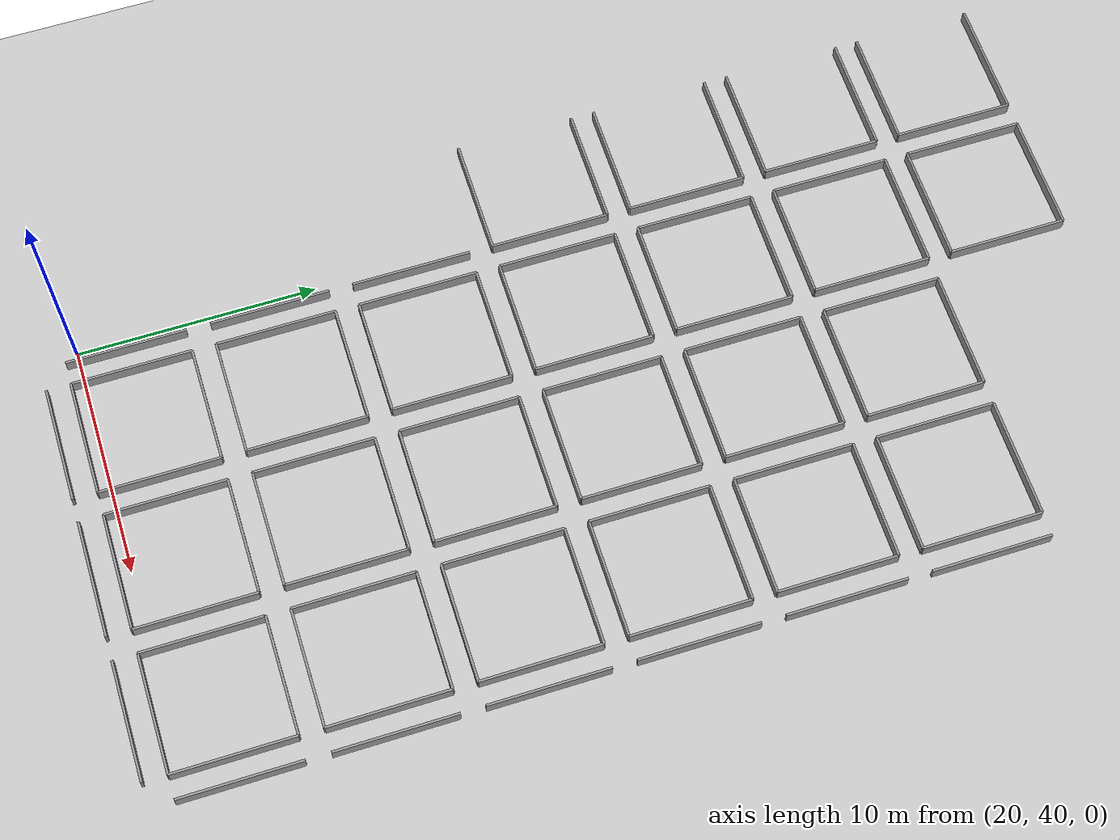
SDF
<sdf version="1.7">
 <world name="default">
  <include><uri>model://sun</uri></include>
  <model name="ground_plane">
   <static>true</static>
   <link name="link">
    <collision name="collision">
     <geometry><plane><normal>0 0 1</normal><size>100 100</size></plane></geometry>
    </collision>
    <visual name="visual">
     <geometry><plane><normal>0 0 1</normal><size>100 100</size></plane></geometry>
     <material>
      <script><uri>file://media/materials/scripts/gazebo.material</uri><name>Gazebo/Grey</name></script>
     </material>
    </visual>
   </link>
  </model>
  <model name="wall_94_north">
   <static>true</static>
   <pose>24 38.5 0 0 0 0</pose>
   <link name="link">
    <collision name="collision"><geometry><box><size>5 0.1 1</size></box></geometry></collision>
    <visual name="visual">
     <geometry><box><size>5 0.1 1</size></box></geometry>
     <material>
      <script><uri>file://media/materials/scripts/gazebo.material</uri><name>Gazebo/Grey</name></script>
     </material>
    </visual>
   </link>
  </model>
  <model name="wall_95_north">
   <static>true</static>
   <pose>30 38.5 0 0 0 0</pose>
   <link name="link">
    <collision name="collision"><geometry><box><size>5 0.1 1</size></box></geometry></collision>
    <visual name="visual">
     <geometry><box><size>5 0.1 1</size></box></geometry>
     <material>
      <script><uri>file://media/materials/scripts/gazebo.material</uri><name>Gazebo/Grey</name></script>
     </material>
    </visual>
   </link>
  </model>
  <model name="wall_96_north">
   <static>true</static>
   <pose>36 38.5 0 0 0 0</pose>
   <link name="link">
    <collision name="collision"><geometry><box><size>5 0.1 1</size></box></geometry></collision>
    <visual name="visual">
     <geometry><box><size>5 0.1 1</size></box></geometry>
     <material>
      <script><uri>file://media/materials/scripts/gazebo.material</uri><name>Gazebo/Grey</name></script>
     </material>
    </visual>
   </link>
  </model>
  <model name="wall_108_east">
   <static>true</static>
   <pose>20.5 42 0 0 0 1.5707</pose>
   <link name="link">
    <collision name="collision"><geometry><box><size>5 0.1 1</size></box></geometry></collision>
    <visual name="visual">
     <geometry><box><size>5 0.1 1</size></box></geometry>
     <material>
      <script><uri>file://media/materials/scripts/gazebo.material</uri><name>Gazebo/Grey</name></script>
     </material>
    </visual>
   </link>
  </model>
  <model name="wall_109_north">
   <static>true</static>
   <pose>24 44.5 0 0 0 0</pose>
   <link name="link">
    <collision name="collision"><geometry><box><size>5 0.1 1</size></box></geometry></collision>
    <visual name="visual">
     <geometry><box><size>5 0.1 1</size></box></geometry>
     <material>
      <script><uri>file://media/materials/scripts/gazebo.material</uri><name>Gazebo/Grey</name></script>
     </material>
    </visual>
   </link>
  </model>
  <model name="wall_109_south">
   <static>true</static>
   <pose>24 39.5 0 0 0 0</pose>
   <link name="link">
    <collision name="collision"><geometry><box><size>5 0.1 1</size></box></geometry></collision>
    <visual name="visual">
     <geometry><box><size>5 0.1 1</size></box></geometry>
     <material>
      <script><uri>file://media/materials/scripts/gazebo.material</uri><name>Gazebo/Grey</name></script>
     </material>
    </visual>
   </link>
  </model>
  <model name="wall_109_east">
   <static>true</static>
   <pose>26.5 42 0 0 0 1.5707</pose>
   <link name="link">
    <collision name="collision"><geometry><box><size>5 0.1 1</size></box></geometry></collision>
    <visual name="visual">
     <geometry><box><size>5 0.1 1</size></box></geometry>
     <material>
      <script><uri>file://media/materials/scripts/gazebo.material</uri><name>Gazebo/Grey</name></script>
     </material>
    </visual>
   </link>
  </model>
  <model name="wall_109_west">
   <static>true</static>
   <pose>21.5 42 0 0 0 1.5707</pose>
   <link name="link">
    <collision name="collision"><geometry><box><size>5 0.1 1</size></box></geometry></collision>
    <visual name="visual">
     <geometry><box><size>5 0.1 1</size></box></geometry>
     <material>
      <script><uri>file://media/materials/scripts/gazebo.material</uri><name>Gazebo/Grey</name></script>
     </material>
    </visual>
   </link>
  </model>
  <model name="wall_110_north">
   <static>true</static>
   <pose>30 44.5 0 0 0 0</pose>
   <link name="link">
    <collision name="collision"><geometry><box><size>5 0.1 1</size></box></geometry></collision>
    <visual name="visual">
     <geometry><box><size>5 0.1 1</size></box></geometry>
     <material>
      <script><uri>file://media/materials/scripts/gazebo.material</uri><name>Gazebo/Grey</name></script>
     </material>
    </visual>
   </link>
  </model>
  <model name="wall_110_south">
   <static>true</static>
   <pose>30 39.5 0 0 0 0</pose>
   <link name="link">
    <collision name="collision"><geometry><box><size>5 0.1 1</size></box></geometry></collision>
    <visual name="visual">
     <geometry><box><size>5 0.1 1</size></box></geometry>
     <material>
      <script><uri>file://media/materials/scripts/gazebo.material</uri><name>Gazebo/Grey</name></script>
     </material>
    </visual>
   </link>
  </model>
  <model name="wall_110_east">
   <static>true</static>
   <pose>32.5 42 0 0 0 1.5707</pose>
   <link name="link">
    <collision name="collision"><geometry><box><size>5 0.1 1</size></box></geometry></collision>
    <visual name="visual">
     <geometry><box><size>5 0.1 1</size></box></geometry>
     <material>
      <script><uri>file://media/materials/scripts/gazebo.material</uri><name>Gazebo/Grey</name></script>
     </material>
    </visual>
   </link>
  </model>
  <model name="wall_110_west">
   <static>true</static>
   <pose>27.5 42 0 0 0 1.5707</pose>
   <link name="link">
    <collision name="collision"><geometry><box><size>5 0.1 1</size></box></geometry></collision>
    <visual name="visual">
     <geometry><box><size>5 0.1 1</size></box></geometry>
     <material>
      <script><uri>file://media/materials/scripts/gazebo.material</uri><name>Gazebo/Grey</name></script>
     </material>
    </visual>
   </link>
  </model>
  <model name="wall_111_north">
   <static>true</static>
   <pose>36 44.5 0 0 0 0</pose>
   <link name="link">
    <collision name="collision"><geometry><box><size>5 0.1 1</size></box></geometry></collision>
    <visual name="visual">
     <geometry><box><size>5 0.1 1</size></box></geometry>
     <material>
      <script><uri>file://media/materials/scripts/gazebo.material</uri><name>Gazebo/Grey</name></script>
     </material>
    </visual>
   </link>
  </model>
  <model name="wall_111_south">
   <static>true</static>
   <pose>36 39.5 0 0 0 0</pose>
   <link name="link">
    <collision name="collision"><geometry><box><size>5 0.1 1</size></box></geometry></collision>
    <visual name="visual">
     <geometry><box><size>5 0.1 1</size></box></geometry>
     <material>
      <script><uri>file://media/materials/scripts/gazebo.material</uri><name>Gazebo/Grey</name></script>
     </material>
    </visual>
   </link>
  </model>
  <model name="wall_111_east">
   <static>true</static>
   <pose>38.5 42 0 0 0 1.5707</pose>
   <link name="link">
    <collision name="collision"><geometry><box><size>5 0.1 1</size></box></geometry></collision>
    <visual name="visual">
     <geometry><box><size>5 0.1 1</size></box></geometry>
     <material>
      <script><uri>file://media/materials/scripts/gazebo.material</uri><name>Gazebo/Grey</name></script>
     </material>
    </visual>
   </link>
  </model>
  <model name="wall_111_west">
   <static>true</static>
   <pose>33.5 42 0 0 0 1.5707</pose>
   <link name="link">
    <collision name="collision"><geometry><box><size>5 0.1 1</size></box></geometry></collision>
    <visual name="visual">
     <geometry><box><size>5 0.1 1</size></box></geometry>
     <material>
      <script><uri>file://media/materials/scripts/gazebo.material</uri><name>Gazebo/Grey</name></script>
     </material>
    </visual>
   </link>
  </model>
  <model name="wall_112_west">
   <static>true</static>
   <pose>39.5 42 0 0 0 1.5707</pose>
   <link name="link">
    <collision name="collision"><geometry><box><size>5 0.1 1</size></box></geometry></collision>
    <visual name="visual">
     <geometry><box><size>5 0.1 1</size></box></geometry>
     <material>
      <script><uri>file://media/materials/scripts/gazebo.material</uri><name>Gazebo/Grey</name></script>
     </material>
    </visual>
   </link>
  </model>
  <model name="wall_123_east">
   <static>true</static>
   <pose>20.5 48 0 0 0 1.5707</pose>
   <link name="link">
    <collision name="collision"><geometry><box><size>5 0.1 1</size></box></geometry></collision>
    <visual name="visual">
     <geometry><box><size>5 0.1 1</size></box></geometry>
     <material>
      <script><uri>file://media/materials/scripts/gazebo.material</uri><name>Gazebo/Grey</name></script>
     </material>
    </visual>
   </link>
  </model>
  <model name="wall_124_north">
   <static>true</static>
   <pose>24 50.5 0 0 0 0</pose>
   <link name="link">
    <collision name="collision"><geometry><box><size>5 0.1 1</size></box></geometry></collision>
    <visual name="visual">
     <geometry><box><size>5 0.1 1</size></box></geometry>
     <material>
      <script><uri>file://media/materials/scripts/gazebo.material</uri><name>Gazebo/Grey</name></script>
     </material>
    </visual>
   </link>
  </model>
  <model name="wall_124_south">
   <static>true</static>
   <pose>24 45.5 0 0 0 0</pose>
   <link name="link">
    <collision name="collision"><geometry><box><size>5 0.1 1</size></box></geometry></collision>
    <visual name="visual">
     <geometry><box><size>5 0.1 1</size></box></geometry>
     <material>
      <script><uri>file://media/materials/scripts/gazebo.material</uri><name>Gazebo/Grey</name></script>
     </material>
    </visual>
   </link>
  </model>
  <model name="wall_124_east">
   <static>true</static>
   <pose>26.5 48 0 0 0 1.5707</pose>
   <link name="link">
    <collision name="collision"><geometry><box><size>5 0.1 1</size></box></geometry></collision>
    <visual name="visual">
     <geometry><box><size>5 0.1 1</size></box></geometry>
     <material>
      <script><uri>file://media/materials/scripts/gazebo.material</uri><name>Gazebo/Grey</name></script>
     </material>
    </visual>
   </link>
  </model>
  <model name="wall_124_west">
   <static>true</static>
   <pose>21.5 48 0 0 0 1.5707</pose>
   <link name="link">
    <collision name="collision"><geometry><box><size>5 0.1 1</size></box></geometry></collision>
    <visual name="visual">
     <geometry><box><size>5 0.1 1</size></box></geometry>
     <material>
      <script><uri>file://media/materials/scripts/gazebo.material</uri><name>Gazebo/Grey</name></script>
     </material>
    </visual>
   </link>
  </model>
  <model name="wall_125_north">
   <static>true</static>
   <pose>30 50.5 0 0 0 0</pose>
   <link name="link">
    <collision name="collision"><geometry><box><size>5 0.1 1</size></box></geometry></collision>
    <visual name="visual">
     <geometry><box><size>5 0.1 1</size></box></geometry>
     <material>
      <script><uri>file://media/materials/scripts/gazebo.material</uri><name>Gazebo/Grey</name></script>
     </material>
    </visual>
   </link>
  </model>
  <model name="wall_125_south">
   <static>true</static>
   <pose>30 45.5 0 0 0 0</pose>
   <link name="link">
    <collision name="collision"><geometry><box><size>5 0.1 1</size></box></geometry></collision>
    <visual name="visual">
     <geometry><box><size>5 0.1 1</size></box></geometry>
     <material>
      <script><uri>file://media/materials/scripts/gazebo.material</uri><name>Gazebo/Grey</name></script>
     </material>
    </visual>
   </link>
  </model>
  <model name="wall_125_east">
   <static>true</static>
   <pose>32.5 48 0 0 0 1.5707</pose>
   <link name="link">
    <collision name="collision"><geometry><box><size>5 0.1 1</size></box></geometry></collision>
    <visual name="visual">
     <geometry><box><size>5 0.1 1</size></box></geometry>
     <material>
      <script><uri>file://media/materials/scripts/gazebo.material</uri><name>Gazebo/Grey</name></script>
     </material>
    </visual>
   </link>
  </model>
  <model name="wall_125_west">
   <static>true</static>
   <pose>27.5 48 0 0 0 1.5707</pose>
   <link name="link">
    <collision name="collision"><geometry><box><size>5 0.1 1</size></box></geometry></collision>
    <visual name="visual">
     <geometry><box><size>5 0.1 1</size></box></geometry>
     <material>
      <script><uri>file://media/materials/scripts/gazebo.material</uri><name>Gazebo/Grey</name></script>
     </material>
    </visual>
   </link>
  </model>
  <model name="wall_126_north">
   <static>true</static>
   <pose>36 50.5 0 0 0 0</pose>
   <link name="link">
    <collision name="collision"><geometry><box><size>5 0.1 1</size></box></geometry></collision>
    <visual name="visual">
     <geometry><box><size>5 0.1 1</size></box></geometry>
     <material>
      <script><uri>file://media/materials/scripts/gazebo.material</uri><name>Gazebo/Grey</name></script>
     </material>
    </visual>
   </link>
  </model>
  <model name="wall_126_south">
   <static>true</static>
   <pose>36 45.5 0 0 0 0</pose>
   <link name="link">
    <collision name="collision"><geometry><box><size>5 0.1 1</size></box></geometry></collision>
    <visual name="visual">
     <geometry><box><size>5 0.1 1</size></box></geometry>
     <material>
      <script><uri>file://media/materials/scripts/gazebo.material</uri><name>Gazebo/Grey</name></script>
     </material>
    </visual>
   </link>
  </model>
  <model name="wall_126_east">
   <static>true</static>
   <pose>38.5 48 0 0 0 1.5707</pose>
   <link name="link">
    <collision name="collision"><geometry><box><size>5 0.1 1</size></box></geometry></collision>
    <visual name="visual">
     <geometry><box><size>5 0.1 1</size></box></geometry>
     <material>
      <script><uri>file://media/materials/scripts/gazebo.material</uri><name>Gazebo/Grey</name></script>
     </material>
    </visual>
   </link>
  </model>
  <model name="wall_126_west">
   <static>true</static>
   <pose>33.5 48 0 0 0 1.5707</pose>
   <link name="link">
    <collision name="collision"><geometry><box><size>5 0.1 1</size></box></geometry></collision>
    <visual name="visual">
     <geometry><box><size>5 0.1 1</size></box></geometry>
     <material>
      <script><uri>file://media/materials/scripts/gazebo.material</uri><name>Gazebo/Grey</name></script>
     </material>
    </visual>
   </link>
  </model>
  <model name="wall_127_west">
   <static>true</static>
   <pose>39.5 48 0 0 0 1.5707</pose>
   <link name="link">
    <collision name="collision"><geometry><box><size>5 0.1 1</size></box></geometry></collision>
    <visual name="visual">
     <geometry><box><size>5 0.1 1</size></box></geometry>
     <material>
      <script><uri>file://media/materials/scripts/gazebo.material</uri><name>Gazebo/Grey</name></script>
     </material>
    </visual>
   </link>
  </model>
  <model name="wall_138_east">
   <static>true</static>
   <pose>20.5 54 0 0 0 1.5707</pose>
   <link name="link">
    <collision name="collision"><geometry><box><size>5 0.1 1</size></box></geometry></collision>
    <visual name="visual">
     <geometry><box><size>5 0.1 1</size></box></geometry>
     <material>
      <script><uri>file://media/materials/scripts/gazebo.material</uri><name>Gazebo/Grey</name></script>
     </material>
    </visual>
   </link>
  </model>
  <model name="wall_139_north">
   <static>true</static>
   <pose>24 56.5 0 0 0 0</pose>
   <link name="link">
    <collision name="collision"><geometry><box><size>5 0.1 1</size></box></geometry></collision>
    <visual name="visual">
     <geometry><box><size>5 0.1 1</size></box></geometry>
     <material>
      <script><uri>file://media/materials/scripts/gazebo.material</uri><name>Gazebo/Grey</name></script>
     </material>
    </visual>
   </link>
  </model>
  <model name="wall_139_south">
   <static>true</static>
   <pose>24 51.5 0 0 0 0</pose>
   <link name="link">
    <collision name="collision"><geometry><box><size>5 0.1 1</size></box></geometry></collision>
    <visual name="visual">
     <geometry><box><size>5 0.1 1</size></box></geometry>
     <material>
      <script><uri>file://media/materials/scripts/gazebo.material</uri><name>Gazebo/Grey</name></script>
     </material>
    </visual>
   </link>
  </model>
  <model name="wall_139_east">
   <static>true</static>
   <pose>26.5 54 0 0 0 1.5707</pose>
   <link name="link">
    <collision name="collision"><geometry><box><size>5 0.1 1</size></box></geometry></collision>
    <visual name="visual">
     <geometry><box><size>5 0.1 1</size></box></geometry>
     <material>
      <script><uri>file://media/materials/scripts/gazebo.material</uri><name>Gazebo/Grey</name></script>
     </material>
    </visual>
   </link>
  </model>
  <model name="wall_139_west">
   <static>true</static>
   <pose>21.5 54 0 0 0 1.5707</pose>
   <link name="link">
    <collision name="collision"><geometry><box><size>5 0.1 1</size></box></geometry></collision>
    <visual name="visual">
     <geometry><box><size>5 0.1 1</size></box></geometry>
     <material>
      <script><uri>file://media/materials/scripts/gazebo.material</uri><name>Gazebo/Grey</name></script>
     </material>
    </visual>
   </link>
  </model>
  <model name="wall_140_north">
   <static>true</static>
   <pose>30 56.5 0 0 0 0</pose>
   <link name="link">
    <collision name="collision"><geometry><box><size>5 0.1 1</size></box></geometry></collision>
    <visual name="visual">
     <geometry><box><size>5 0.1 1</size></box></geometry>
     <material>
      <script><uri>file://media/materials/scripts/gazebo.material</uri><name>Gazebo/Grey</name></script>
     </material>
    </visual>
   </link>
  </model>
  <model name="wall_140_south">
   <static>true</static>
   <pose>30 51.5 0 0 0 0</pose>
   <link name="link">
    <collision name="collision"><geometry><box><size>5 0.1 1</size></box></geometry></collision>
    <visual name="visual">
     <geometry><box><size>5 0.1 1</size></box></geometry>
     <material>
      <script><uri>file://media/materials/scripts/gazebo.material</uri><name>Gazebo/Grey</name></script>
     </material>
    </visual>
   </link>
  </model>
  <model name="wall_140_east">
   <static>true</static>
   <pose>32.5 54 0 0 0 1.5707</pose>
   <link name="link">
    <collision name="collision"><geometry><box><size>5 0.1 1</size></box></geometry></collision>
    <visual name="visual">
     <geometry><box><size>5 0.1 1</size></box></geometry>
     <material>
      <script><uri>file://media/materials/scripts/gazebo.material</uri><name>Gazebo/Grey</name></script>
     </material>
    </visual>
   </link>
  </model>
  <model name="wall_140_west">
   <static>true</static>
   <pose>27.5 54 0 0 0 1.5707</pose>
   <link name="link">
    <collision name="collision"><geometry><box><size>5 0.1 1</size></box></geometry></collision>
    <visual name="visual">
     <geometry><box><size>5 0.1 1</size></box></geometry>
     <material>
      <script><uri>file://media/materials/scripts/gazebo.material</uri><name>Gazebo/Grey</name></script>
     </material>
    </visual>
   </link>
  </model>
  <model name="wall_141_north">
   <static>true</static>
   <pose>36 56.5 0 0 0 0</pose>
   <link name="link">
    <collision name="collision"><geometry><box><size>5 0.1 1</size></box></geometry></collision>
    <visual name="visual">
     <geometry><box><size>5 0.1 1</size></box></geometry>
     <material>
      <script><uri>file://media/materials/scripts/gazebo.material</uri><name>Gazebo/Grey</name></script>
     </material>
    </visual>
   </link>
  </model>
  <model name="wall_141_south">
   <static>true</static>
   <pose>36 51.5 0 0 0 0</pose>
   <link name="link">
    <collision name="collision"><geometry><box><size>5 0.1 1</size></box></geometry></collision>
    <visual name="visual">
     <geometry><box><size>5 0.1 1</size></box></geometry>
     <material>
      <script><uri>file://media/materials/scripts/gazebo.material</uri><name>Gazebo/Grey</name></script>
     </material>
    </visual>
   </link>
  </model>
  <model name="wall_141_east">
   <static>true</static>
   <pose>38.5 54 0 0 0 1.5707</pose>
   <link name="link">
    <collision name="collision"><geometry><box><size>5 0.1 1</size></box></geometry></collision>
    <visual name="visual">
     <geometry><box><size>5 0.1 1</size></box></geometry>
     <material>
      <script><uri>file://media/materials/scripts/gazebo.material</uri><name>Gazebo/Grey</name></script>
     </material>
    </visual>
   </link>
  </model>
  <model name="wall_141_west">
   <static>true</static>
   <pose>33.5 54 0 0 0 1.5707</pose>
   <link name="link">
    <collision name="collision"><geometry><box><size>5 0.1 1</size></box></geometry></collision>
    <visual name="visual">
     <geometry><box><size>5 0.1 1</size></box></geometry>
     <material>
      <script><uri>file://media/materials/scripts/gazebo.material</uri><name>Gazebo/Grey</name></script>
     </material>
    </visual>
   </link>
  </model>
  <model name="wall_142_west">
   <static>true</static>
   <pose>39.5 54 0 0 0 1.5707</pose>
   <link name="link">
    <collision name="collision"><geometry><box><size>5 0.1 1</size></box></geometry></collision>
    <visual name="visual">
     <geometry><box><size>5 0.1 1</size></box></geometry>
     <material>
      <script><uri>file://media/materials/scripts/gazebo.material</uri><name>Gazebo/Grey</name></script>
     </material>
    </visual>
   </link>
  </model>
  <model name="wall_153_north">
   <static>true</static>
   <pose>18 62.5 0 0 0 0</pose>
   <link name="link">
    <collision name="collision"><geometry><box><size>5 0.1 1</size></box></geometry></collision>
    <visual name="visual">
     <geometry><box><size>5 0.1 1</size></box></geometry>
     <material>
      <script><uri>file://media/materials/scripts/gazebo.material</uri><name>Gazebo/Grey</name></script>
     </material>
    </visual>
   </link>
  </model>
  <model name="wall_153_south">
   <static>true</static>
   <pose>18 57.5 0 0 0 0</pose>
   <link name="link">
    <collision name="collision"><geometry><box><size>5 0.1 1</size></box></geometry></collision>
    <visual name="visual">
     <geometry><box><size>5 0.1 1</size></box></geometry>
     <material>
      <script><uri>file://media/materials/scripts/gazebo.material</uri><name>Gazebo/Grey</name></script>
     </material>
    </visual>
   </link>
  </model>
  <model name="wall_153_east">
   <static>true</static>
   <pose>20.5 60 0 0 0 1.5707</pose>
   <link name="link">
    <collision name="collision"><geometry><box><size>5 0.1 1</size></box></geometry></collision>
    <visual name="visual">
     <geometry><box><size>5 0.1 1</size></box></geometry>
     <material>
      <script><uri>file://media/materials/scripts/gazebo.material</uri><name>Gazebo/Grey</name></script>
     </material>
    </visual>
   </link>
  </model>
  <model name="wall_154_north">
   <static>true</static>
   <pose>24 62.5 0 0 0 0</pose>
   <link name="link">
    <collision name="collision"><geometry><box><size>5 0.1 1</size></box></geometry></collision>
    <visual name="visual">
     <geometry><box><size>5 0.1 1</size></box></geometry>
     <material>
      <script><uri>file://media/materials/scripts/gazebo.material</uri><name>Gazebo/Grey</name></script>
     </material>
    </visual>
   </link>
  </model>
  <model name="wall_154_south">
   <static>true</static>
   <pose>24 57.5 0 0 0 0</pose>
   <link name="link">
    <collision name="collision"><geometry><box><size>5 0.1 1</size></box></geometry></collision>
    <visual name="visual">
     <geometry><box><size>5 0.1 1</size></box></geometry>
     <material>
      <script><uri>file://media/materials/scripts/gazebo.material</uri><name>Gazebo/Grey</name></script>
     </material>
    </visual>
   </link>
  </model>
  <model name="wall_154_east">
   <static>true</static>
   <pose>26.5 60 0 0 0 1.5707</pose>
   <link name="link">
    <collision name="collision"><geometry><box><size>5 0.1 1</size></box></geometry></collision>
    <visual name="visual">
     <geometry><box><size>5 0.1 1</size></box></geometry>
     <material>
      <script><uri>file://media/materials/scripts/gazebo.material</uri><name>Gazebo/Grey</name></script>
     </material>
    </visual>
   </link>
  </model>
  <model name="wall_154_west">
   <static>true</static>
   <pose>21.5 60 0 0 0 1.5707</pose>
   <link name="link">
    <collision name="collision"><geometry><box><size>5 0.1 1</size></box></geometry></collision>
    <visual name="visual">
     <geometry><box><size>5 0.1 1</size></box></geometry>
     <material>
      <script><uri>file://media/materials/scripts/gazebo.material</uri><name>Gazebo/Grey</name></script>
     </material>
    </visual>
   </link>
  </model>
  <model name="wall_155_north">
   <static>true</static>
   <pose>30 62.5 0 0 0 0</pose>
   <link name="link">
    <collision name="collision"><geometry><box><size>5 0.1 1</size></box></geometry></collision>
    <visual name="visual">
     <geometry><box><size>5 0.1 1</size></box></geometry>
     <material>
      <script><uri>file://media/materials/scripts/gazebo.material</uri><name>Gazebo/Grey</name></script>
     </material>
    </visual>
   </link>
  </model>
  <model name="wall_155_south">
   <static>true</static>
   <pose>30 57.5 0 0 0 0</pose>
   <link name="link">
    <collision name="collision"><geometry><box><size>5 0.1 1</size></box></geometry></collision>
    <visual name="visual">
     <geometry><box><size>5 0.1 1</size></box></geometry>
     <material>
      <script><uri>file://media/materials/scripts/gazebo.material</uri><name>Gazebo/Grey</name></script>
     </material>
    </visual>
   </link>
  </model>
  <model name="wall_155_east">
   <static>true</static>
   <pose>32.5 60 0 0 0 1.5707</pose>
   <link name="link">
    <collision name="collision"><geometry><box><size>5 0.1 1</size></box></geometry></collision>
    <visual name="visual">
     <geometry><box><size>5 0.1 1</size></box></geometry>
     <material>
      <script><uri>file://media/materials/scripts/gazebo.material</uri><name>Gazebo/Grey</name></script>
     </material>
    </visual>
   </link>
  </model>
  <model name="wall_155_west">
   <static>true</static>
   <pose>27.5 60 0 0 0 1.5707</pose>
   <link name="link">
    <collision name="collision"><geometry><box><size>5 0.1 1</size></box></geometry></collision>
    <visual name="visual">
     <geometry><box><size>5 0.1 1</size></box></geometry>
     <material>
      <script><uri>file://media/materials/scripts/gazebo.material</uri><name>Gazebo/Grey</name></script>
     </material>
    </visual>
   </link>
  </model>
  <model name="wall_156_north">
   <static>true</static>
   <pose>36 62.5 0 0 0 0</pose>
   <link name="link">
    <collision name="collision"><geometry><box><size>5 0.1 1</size></box></geometry></collision>
    <visual name="visual">
     <geometry><box><size>5 0.1 1</size></box></geometry>
     <material>
      <script><uri>file://media/materials/scripts/gazebo.material</uri><name>Gazebo/Grey</name></script>
     </material>
    </visual>
   </link>
  </model>
  <model name="wall_156_south">
   <static>true</static>
   <pose>36 57.5 0 0 0 0</pose>
   <link name="link">
    <collision name="collision"><geometry><box><size>5 0.1 1</size></box></geometry></collision>
    <visual name="visual">
     <geometry><box><size>5 0.1 1</size></box></geometry>
     <material>
      <script><uri>file://media/materials/scripts/gazebo.material</uri><name>Gazebo/Grey</name></script>
     </material>
    </visual>
   </link>
  </model>
  <model name="wall_156_east">
   <static>true</static>
   <pose>38.5 60 0 0 0 1.5707</pose>
   <link name="link">
    <collision name="collision"><geometry><box><size>5 0.1 1</size></box></geometry></collision>
    <visual name="visual">
     <geometry><box><size>5 0.1 1</size></box></geometry>
     <material>
      <script><uri>file://media/materials/scripts/gazebo.material</uri><name>Gazebo/Grey</name></script>
     </material>
    </visual>
   </link>
  </model>
  <model name="wall_156_west">
   <static>true</static>
   <pose>33.5 60 0 0 0 1.5707</pose>
   <link name="link">
    <collision name="collision"><geometry><box><size>5 0.1 1</size></box></geometry></collision>
    <visual name="visual">
     <geometry><box><size>5 0.1 1</size></box></geometry>
     <material>
      <script><uri>file://media/materials/scripts/gazebo.material</uri><name>Gazebo/Grey</name></script>
     </material>
    </visual>
   </link>
  </model>
  <model name="wall_157_west">
   <static>true</static>
   <pose>39.5 60 0 0 0 1.5707</pose>
   <link name="link">
    <collision name="collision"><geometry><box><size>5 0.1 1</size></box></geometry></collision>
    <visual name="visual">
     <geometry><box><size>5 0.1 1</size></box></geometry>
     <material>
      <script><uri>file://media/materials/scripts/gazebo.material</uri><name>Gazebo/Grey</name></script>
     </material>
    </visual>
   </link>
  </model>
  <model name="wall_168_north">
   <static>true</static>
   <pose>18 68.5 0 0 0 0</pose>
   <link name="link">
    <collision name="collision"><geometry><box><size>5 0.1 1</size></box></geometry></collision>
    <visual name="visual">
     <geometry><box><size>5 0.1 1</size></box></geometry>
     <material>
      <script><uri>file://media/materials/scripts/gazebo.material</uri><name>Gazebo/Grey</name></script>
     </material>
    </visual>
   </link>
  </model>
  <model name="wall_168_south">
   <static>true</static>
   <pose>18 63.5 0 0 0 0</pose>
   <link name="link">
    <collision name="collision"><geometry><box><size>5 0.1 1</size></box></geometry></collision>
    <visual name="visual">
     <geometry><box><size>5 0.1 1</size></box></geometry>
     <material>
      <script><uri>file://media/materials/scripts/gazebo.material</uri><name>Gazebo/Grey</name></script>
     </material>
    </visual>
   </link>
  </model>
  <model name="wall_168_east">
   <static>true</static>
   <pose>20.5 66 0 0 0 1.5707</pose>
   <link name="link">
    <collision name="collision"><geometry><box><size>5 0.1 1</size></box></geometry></collision>
    <visual name="visual">
     <geometry><box><size>5 0.1 1</size></box></geometry>
     <material>
      <script><uri>file://media/materials/scripts/gazebo.material</uri><name>Gazebo/Grey</name></script>
     </material>
    </visual>
   </link>
  </model>
  <model name="wall_169_north">
   <static>true</static>
   <pose>24 68.5 0 0 0 0</pose>
   <link name="link">
    <collision name="collision"><geometry><box><size>5 0.1 1</size></box></geometry></collision>
    <visual name="visual">
     <geometry><box><size>5 0.1 1</size></box></geometry>
     <material>
      <script><uri>file://media/materials/scripts/gazebo.material</uri><name>Gazebo/Grey</name></script>
     </material>
    </visual>
   </link>
  </model>
  <model name="wall_169_south">
   <static>true</static>
   <pose>24 63.5 0 0 0 0</pose>
   <link name="link">
    <collision name="collision"><geometry><box><size>5 0.1 1</size></box></geometry></collision>
    <visual name="visual">
     <geometry><box><size>5 0.1 1</size></box></geometry>
     <material>
      <script><uri>file://media/materials/scripts/gazebo.material</uri><name>Gazebo/Grey</name></script>
     </material>
    </visual>
   </link>
  </model>
  <model name="wall_169_east">
   <static>true</static>
   <pose>26.5 66 0 0 0 1.5707</pose>
   <link name="link">
    <collision name="collision"><geometry><box><size>5 0.1 1</size></box></geometry></collision>
    <visual name="visual">
     <geometry><box><size>5 0.1 1</size></box></geometry>
     <material>
      <script><uri>file://media/materials/scripts/gazebo.material</uri><name>Gazebo/Grey</name></script>
     </material>
    </visual>
   </link>
  </model>
  <model name="wall_169_west">
   <static>true</static>
   <pose>21.5 66 0 0 0 1.5707</pose>
   <link name="link">
    <collision name="collision"><geometry><box><size>5 0.1 1</size></box></geometry></collision>
    <visual name="visual">
     <geometry><box><size>5 0.1 1</size></box></geometry>
     <material>
      <script><uri>file://media/materials/scripts/gazebo.material</uri><name>Gazebo/Grey</name></script>
     </material>
    </visual>
   </link>
  </model>
  <model name="wall_170_north">
   <static>true</static>
   <pose>30 68.5 0 0 0 0</pose>
   <link name="link">
    <collision name="collision"><geometry><box><size>5 0.1 1</size></box></geometry></collision>
    <visual name="visual">
     <geometry><box><size>5 0.1 1</size></box></geometry>
     <material>
      <script><uri>file://media/materials/scripts/gazebo.material</uri><name>Gazebo/Grey</name></script>
     </material>
    </visual>
   </link>
  </model>
  <model name="wall_170_south">
   <static>true</static>
   <pose>30 63.5 0 0 0 0</pose>
   <link name="link">
    <collision name="collision"><geometry><box><size>5 0.1 1</size></box></geometry></collision>
    <visual name="visual">
     <geometry><box><size>5 0.1 1</size></box></geometry>
     <material>
      <script><uri>file://media/materials/scripts/gazebo.material</uri><name>Gazebo/Grey</name></script>
     </material>
    </visual>
   </link>
  </model>
  <model name="wall_170_east">
   <static>true</static>
   <pose>32.5 66 0 0 0 1.5707</pose>
   <link name="link">
    <collision name="collision"><geometry><box><size>5 0.1 1</size></box></geometry></collision>
    <visual name="visual">
     <geometry><box><size>5 0.1 1</size></box></geometry>
     <material>
      <script><uri>file://media/materials/scripts/gazebo.material</uri><name>Gazebo/Grey</name></script>
     </material>
    </visual>
   </link>
  </model>
  <model name="wall_170_west">
   <static>true</static>
   <pose>27.5 66 0 0 0 1.5707</pose>
   <link name="link">
    <collision name="collision"><geometry><box><size>5 0.1 1</size></box></geometry></collision>
    <visual name="visual">
     <geometry><box><size>5 0.1 1</size></box></geometry>
     <material>
      <script><uri>file://media/materials/scripts/gazebo.material</uri><name>Gazebo/Grey</name></script>
     </material>
    </visual>
   </link>
  </model>
  <model name="wall_171_north">
   <static>true</static>
   <pose>36 68.5 0 0 0 0</pose>
   <link name="link">
    <collision name="collision"><geometry><box><size>5 0.1 1</size></box></geometry></collision>
    <visual name="visual">
     <geometry><box><size>5 0.1 1</size></box></geometry>
     <material>
      <script><uri>file://media/materials/scripts/gazebo.material</uri><name>Gazebo/Grey</name></script>
     </material>
    </visual>
   </link>
  </model>
  <model name="wall_171_south">
   <static>true</static>
   <pose>36 63.5 0 0 0 0</pose>
   <link name="link">
    <collision name="collision"><geometry><box><size>5 0.1 1</size></box></geometry></collision>
    <visual name="visual">
     <geometry><box><size>5 0.1 1</size></box></geometry>
     <material>
      <script><uri>file://media/materials/scripts/gazebo.material</uri><name>Gazebo/Grey</name></script>
     </material>
    </visual>
   </link>
  </model>
  <model name="wall_171_east">
   <static>true</static>
   <pose>38.5 66 0 0 0 1.5707</pose>
   <link name="link">
    <collision name="collision"><geometry><box><size>5 0.1 1</size></box></geometry></collision>
    <visual name="visual">
     <geometry><box><size>5 0.1 1</size></box></geometry>
     <material>
      <script><uri>file://media/materials/scripts/gazebo.material</uri><name>Gazebo/Grey</name></script>
     </material>
    </visual>
   </link>
  </model>
  <model name="wall_171_west">
   <static>true</static>
   <pose>33.5 66 0 0 0 1.5707</pose>
   <link name="link">
    <collision name="collision"><geometry><box><size>5 0.1 1</size></box></geometry></collision>
    <visual name="visual">
     <geometry><box><size>5 0.1 1</size></box></geometry>
     <material>
      <script><uri>file://media/materials/scripts/gazebo.material</uri><name>Gazebo/Grey</name></script>
     </material>
    </visual>
   </link>
  </model>
  <model name="wall_172_west">
   <static>true</static>
   <pose>39.5 66 0 0 0 1.5707</pose>
   <link name="link">
    <collision name="collision"><geometry><box><size>5 0.1 1</size></box></geometry></collision>
    <visual name="visual">
     <geometry><box><size>5 0.1 1</size></box></geometry>
     <material>
      <script><uri>file://media/materials/scripts/gazebo.material</uri><name>Gazebo/Grey</name></script>
     </material>
    </visual>
   </link>
  </model>
  <model name="wall_183_north">
   <static>true</static>
   <pose>18 74.5 0 0 0 0</pose>
   <link name="link">
    <collision name="collision"><geometry><box><size>5 0.1 1</size></box></geometry></collision>
    <visual name="visual">
     <geometry><box><size>5 0.1 1</size></box></geometry>
     <material>
      <script><uri>file://media/materials/scripts/gazebo.material</uri><name>Gazebo/Grey</name></script>
     </material>
    </visual>
   </link>
  </model>
  <model name="wall_183_south">
   <static>true</static>
   <pose>18 69.5 0 0 0 0</pose>
   <link name="link">
    <collision name="collision"><geometry><box><size>5 0.1 1</size></box></geometry></collision>
    <visual name="visual">
     <geometry><box><size>5 0.1 1</size></box></geometry>
     <material>
      <script><uri>file://media/materials/scripts/gazebo.material</uri><name>Gazebo/Grey</name></script>
     </material>
    </visual>
   </link>
  </model>
  <model name="wall_183_east">
   <static>true</static>
   <pose>20.5 72 0 0 0 1.5707</pose>
   <link name="link">
    <collision name="collision"><geometry><box><size>5 0.1 1</size></box></geometry></collision>
    <visual name="visual">
     <geometry><box><size>5 0.1 1</size></box></geometry>
     <material>
      <script><uri>file://media/materials/scripts/gazebo.material</uri><name>Gazebo/Grey</name></script>
     </material>
    </visual>
   </link>
  </model>
  <model name="wall_184_north">
   <static>true</static>
   <pose>24 74.5 0 0 0 0</pose>
   <link name="link">
    <collision name="collision"><geometry><box><size>5 0.1 1</size></box></geometry></collision>
    <visual name="visual">
     <geometry><box><size>5 0.1 1</size></box></geometry>
     <material>
      <script><uri>file://media/materials/scripts/gazebo.material</uri><name>Gazebo/Grey</name></script>
     </material>
    </visual>
   </link>
  </model>
  <model name="wall_184_south">
   <static>true</static>
   <pose>24 69.5 0 0 0 0</pose>
   <link name="link">
    <collision name="collision"><geometry><box><size>5 0.1 1</size></box></geometry></collision>
    <visual name="visual">
     <geometry><box><size>5 0.1 1</size></box></geometry>
     <material>
      <script><uri>file://media/materials/scripts/gazebo.material</uri><name>Gazebo/Grey</name></script>
     </material>
    </visual>
   </link>
  </model>
  <model name="wall_184_east">
   <static>true</static>
   <pose>26.5 72 0 0 0 1.5707</pose>
   <link name="link">
    <collision name="collision"><geometry><box><size>5 0.1 1</size></box></geometry></collision>
    <visual name="visual">
     <geometry><box><size>5 0.1 1</size></box></geometry>
     <material>
      <script><uri>file://media/materials/scripts/gazebo.material</uri><name>Gazebo/Grey</name></script>
     </material>
    </visual>
   </link>
  </model>
  <model name="wall_184_west">
   <static>true</static>
   <pose>21.5 72 0 0 0 1.5707</pose>
   <link name="link">
    <collision name="collision"><geometry><box><size>5 0.1 1</size></box></geometry></collision>
    <visual name="visual">
     <geometry><box><size>5 0.1 1</size></box></geometry>
     <material>
      <script><uri>file://media/materials/scripts/gazebo.material</uri><name>Gazebo/Grey</name></script>
     </material>
    </visual>
   </link>
  </model>
  <model name="wall_185_north">
   <static>true</static>
   <pose>30 74.5 0 0 0 0</pose>
   <link name="link">
    <collision name="collision"><geometry><box><size>5 0.1 1</size></box></geometry></collision>
    <visual name="visual">
     <geometry><box><size>5 0.1 1</size></box></geometry>
     <material>
      <script><uri>file://media/materials/scripts/gazebo.material</uri><name>Gazebo/Grey</name></script>
     </material>
    </visual>
   </link>
  </model>
  <model name="wall_185_south">
   <static>true</static>
   <pose>30 69.5 0 0 0 0</pose>
   <link name="link">
    <collision name="collision"><geometry><box><size>5 0.1 1</size></box></geometry></collision>
    <visual name="visual">
     <geometry><box><size>5 0.1 1</size></box></geometry>
     <material>
      <script><uri>file://media/materials/scripts/gazebo.material</uri><name>Gazebo/Grey</name></script>
     </material>
    </visual>
   </link>
  </model>
  <model name="wall_185_east">
   <static>true</static>
   <pose>32.5 72 0 0 0 1.5707</pose>
   <link name="link">
    <collision name="collision"><geometry><box><size>5 0.1 1</size></box></geometry></collision>
    <visual name="visual">
     <geometry><box><size>5 0.1 1</size></box></geometry>
     <material>
      <script><uri>file://media/materials/scripts/gazebo.material</uri><name>Gazebo/Grey</name></script>
     </material>
    </visual>
   </link>
  </model>
  <model name="wall_185_west">
   <static>true</static>
   <pose>27.5 72 0 0 0 1.5707</pose>
   <link name="link">
    <collision name="collision"><geometry><box><size>5 0.1 1</size></box></geometry></collision>
    <visual name="visual">
     <geometry><box><size>5 0.1 1</size></box></geometry>
     <material>
      <script><uri>file://media/materials/scripts/gazebo.material</uri><name>Gazebo/Grey</name></script>
     </material>
    </visual>
   </link>
  </model>
  <model name="wall_186_north">
   <static>true</static>
   <pose>36 74.5 0 0 0 0</pose>
   <link name="link">
    <collision name="collision"><geometry><box><size>5 0.1 1</size></box></geometry></collision>
    <visual name="visual">
     <geometry><box><size>5 0.1 1</size></box></geometry>
     <material>
      <script><uri>file://media/materials/scripts/gazebo.material</uri><name>Gazebo/Grey</name></script>
     </material>
    </visual>
   </link>
  </model>
  <model name="wall_186_south">
   <static>true</static>
   <pose>36 69.5 0 0 0 0</pose>
   <link name="link">
    <collision name="collision"><geometry><box><size>5 0.1 1</size></box></geometry></collision>
    <visual name="visual">
     <geometry><box><size>5 0.1 1</size></box></geometry>
     <material>
      <script><uri>file://media/materials/scripts/gazebo.material</uri><name>Gazebo/Grey</name></script>
     </material>
    </visual>
   </link>
  </model>
  <model name="wall_186_east">
   <static>true</static>
   <pose>38.5 72 0 0 0 1.5707</pose>
   <link name="link">
    <collision name="collision"><geometry><box><size>5 0.1 1</size></box></geometry></collision>
    <visual name="visual">
     <geometry><box><size>5 0.1 1</size></box></geometry>
     <material>
      <script><uri>file://media/materials/scripts/gazebo.material</uri><name>Gazebo/Grey</name></script>
     </material>
    </visual>
   </link>
  </model>
  <model name="wall_186_west">
   <static>true</static>
   <pose>33.5 72 0 0 0 1.5707</pose>
   <link name="link">
    <collision name="collision"><geometry><box><size>5 0.1 1</size></box></geometry></collision>
    <visual name="visual">
     <geometry><box><size>5 0.1 1</size></box></geometry>
     <material>
      <script><uri>file://media/materials/scripts/gazebo.material</uri><name>Gazebo/Grey</name></script>
     </material>
    </visual>
   </link>
  </model>
  <model name="wall_187_west">
   <static>true</static>
   <pose>39.5 72 0 0 0 1.5707</pose>
   <link name="link">
    <collision name="collision"><geometry><box><size>5 0.1 1</size></box></geometry></collision>
    <visual name="visual">
     <geometry><box><size>5 0.1 1</size></box></geometry>
     <material>
      <script><uri>file://media/materials/scripts/gazebo.material</uri><name>Gazebo/Grey</name></script>
     </material>
    </visual>
   </link>
  </model>
  <model name="wall_198_north">
   <static>true</static>
   <pose>18 80.5 0 0 0 0</pose>
   <link name="link">
    <collision name="collision"><geometry><box><size>5 0.1 1</size></box></geometry></collision>
    <visual name="visual">
     <geometry><box><size>5 0.1 1</size></box></geometry>
     <material>
      <script><uri>file://media/materials/scripts/gazebo.material</uri><name>Gazebo/Grey</name></script>
     </material>
    </visual>
   </link>
  </model>
  <model name="wall_198_south">
   <static>true</static>
   <pose>18 75.5 0 0 0 0</pose>
   <link name="link">
    <collision name="collision"><geometry><box><size>5 0.1 1</size></box></geometry></collision>
    <visual name="visual">
     <geometry><box><size>5 0.1 1</size></box></geometry>
     <material>
      <script><uri>file://media/materials/scripts/gazebo.material</uri><name>Gazebo/Grey</name></script>
     </material>
    </visual>
   </link>
  </model>
  <model name="wall_198_east">
   <static>true</static>
   <pose>20.5 78 0 0 0 1.5707</pose>
   <link name="link">
    <collision name="collision"><geometry><box><size>5 0.1 1</size></box></geometry></collision>
    <visual name="visual">
     <geometry><box><size>5 0.1 1</size></box></geometry>
     <material>
      <script><uri>file://media/materials/scripts/gazebo.material</uri><name>Gazebo/Grey</name></script>
     </material>
    </visual>
   </link>
  </model>
  <model name="wall_199_north">
   <static>true</static>
   <pose>24 80.5 0 0 0 0</pose>
   <link name="link">
    <collision name="collision"><geometry><box><size>5 0.1 1</size></box></geometry></collision>
    <visual name="visual">
     <geometry><box><size>5 0.1 1</size></box></geometry>
     <material>
      <script><uri>file://media/materials/scripts/gazebo.material</uri><name>Gazebo/Grey</name></script>
     </material>
    </visual>
   </link>
  </model>
  <model name="wall_199_south">
   <static>true</static>
   <pose>24 75.5 0 0 0 0</pose>
   <link name="link">
    <collision name="collision"><geometry><box><size>5 0.1 1</size></box></geometry></collision>
    <visual name="visual">
     <geometry><box><size>5 0.1 1</size></box></geometry>
     <material>
      <script><uri>file://media/materials/scripts/gazebo.material</uri><name>Gazebo/Grey</name></script>
     </material>
    </visual>
   </link>
  </model>
  <model name="wall_199_east">
   <static>true</static>
   <pose>26.5 78 0 0 0 1.5707</pose>
   <link name="link">
    <collision name="collision"><geometry><box><size>5 0.1 1</size></box></geometry></collision>
    <visual name="visual">
     <geometry><box><size>5 0.1 1</size></box></geometry>
     <material>
      <script><uri>file://media/materials/scripts/gazebo.material</uri><name>Gazebo/Grey</name></script>
     </material>
    </visual>
   </link>
  </model>
  <model name="wall_199_west">
   <static>true</static>
   <pose>21.5 78 0 0 0 1.5707</pose>
   <link name="link">
    <collision name="collision"><geometry><box><size>5 0.1 1</size></box></geometry></collision>
    <visual name="visual">
     <geometry><box><size>5 0.1 1</size></box></geometry>
     <material>
      <script><uri>file://media/materials/scripts/gazebo.material</uri><name>Gazebo/Grey</name></script>
     </material>
    </visual>
   </link>
  </model>
 </world>
</sdf>
